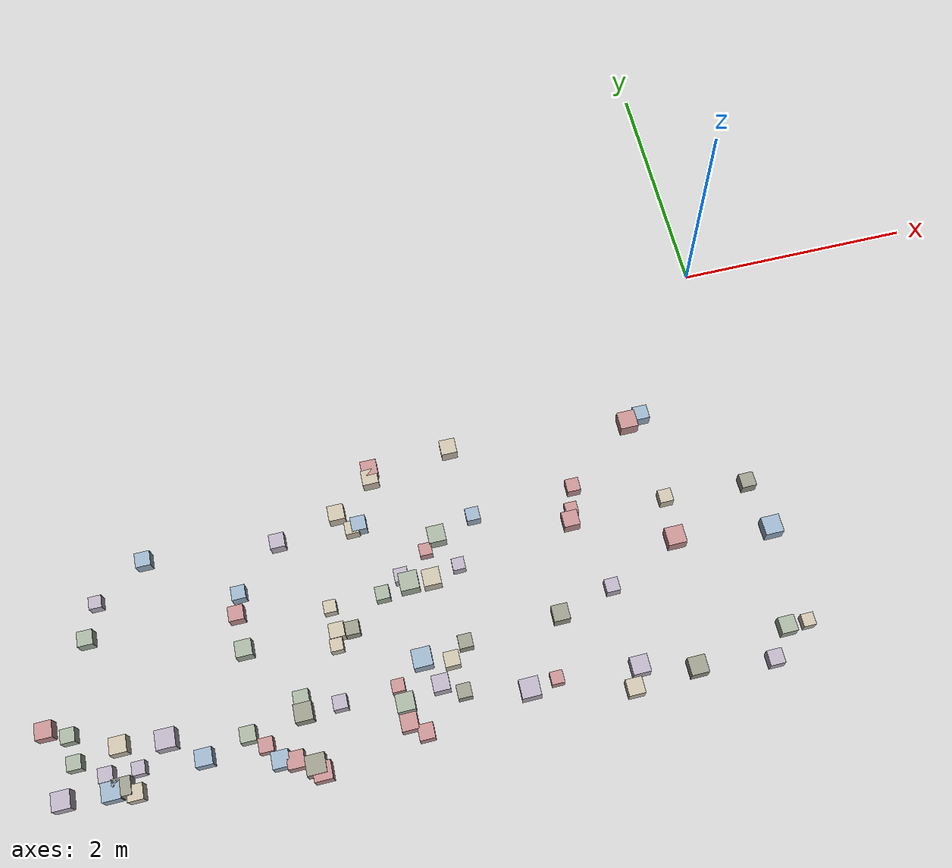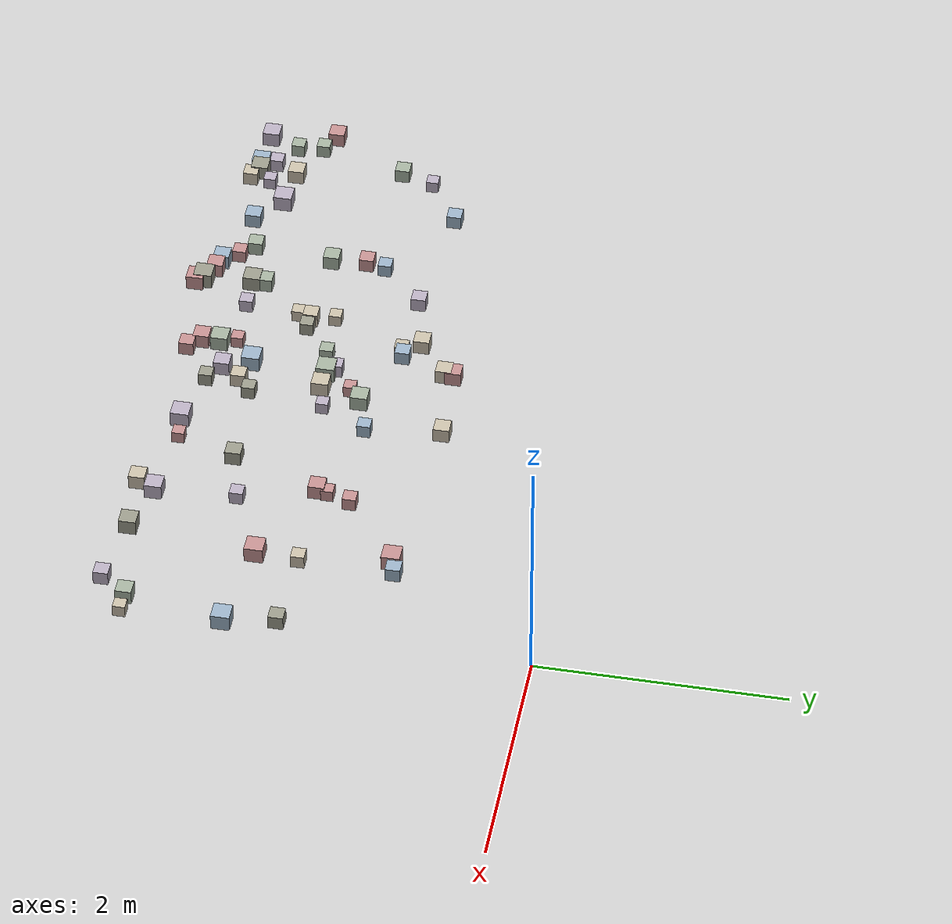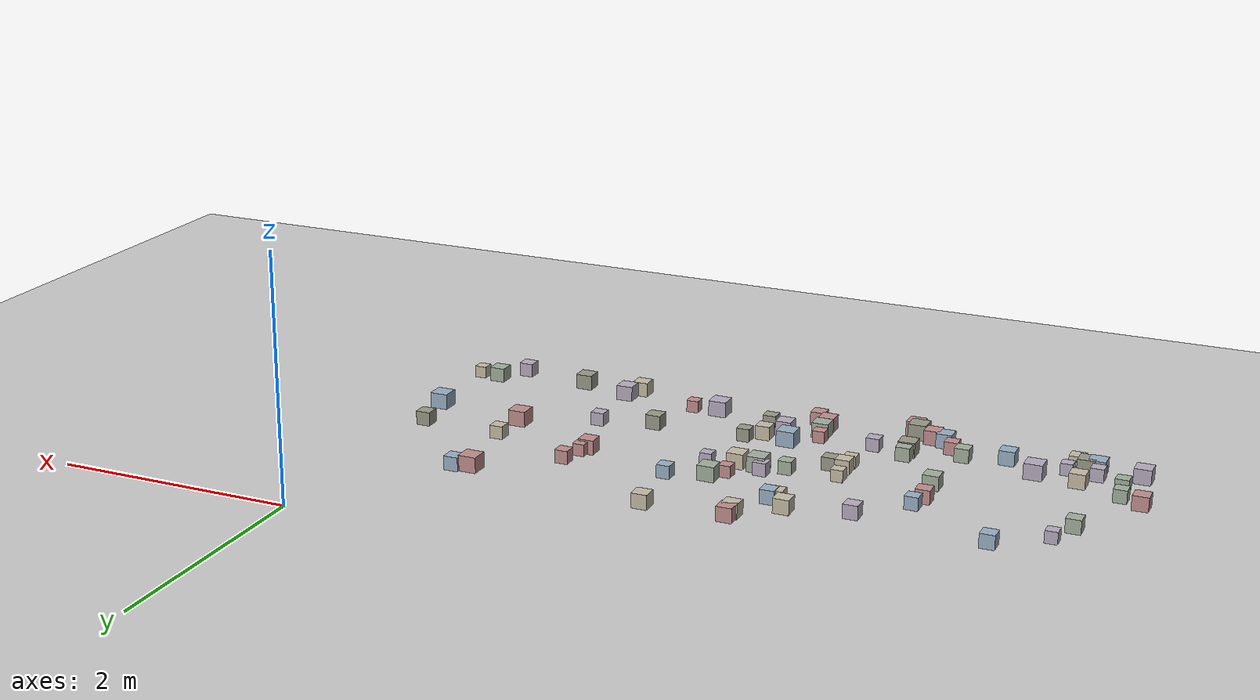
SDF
<sdf version="1.6">
 <world name="small_maze_world">
  <include><uri>model://ground_plane</uri></include>
  <include><uri>model://sun</uri></include>
  <model name="box_7">
   <static>false</static>
   <pose>-2.89 -3.04 0.05 0 0 0</pose>
   <link name="link">
    <inertial>
     <mass>0.2</mass>
     <inertia><ixx>0.001</ixx><iyy>0.001</iyy><izz>0.001</izz><ixy>0</ixy><ixz>0</ixz><iyz>0</iyz></inertia>
    </inertial>
    <collision name="collision"><geometry><box><size>0.13 0.13 0.13</size></box></geometry></collision>
    <visual name="visual">
     <geometry><box><size>0.13 0.13 0.13</size></box></geometry>
     <material><ambient>0.72 0.68 0.75 1</ambient><diffuse>0.72 0.68 0.75 1</diffuse></material>
    </visual>
   </link>
  </model>
  <model name="box_10">
   <static>false</static>
   <pose>-5.23 -3.29 0.05 0 0 0</pose>
   <link name="link">
    <inertial>
     <mass>0.2</mass>
     <inertia><ixx>0.001</ixx><iyy>0.001</iyy><izz>0.001</izz><ixy>0</ixy><ixz>0</ixz><iyz>0</iyz></inertia>
    </inertial>
    <collision name="collision"><geometry><box><size>0.12 0.12 0.12</size></box></geometry></collision>
    <visual name="visual">
     <geometry><box><size>0.12 0.12 0.12</size></box></geometry>
     <material><ambient>0.78 0.74 0.66 1</ambient><diffuse>0.78 0.74 0.66 1</diffuse></material>
    </visual>
   </link>
  </model>
  <model name="box_33">
   <static>false</static>
   <pose>-4.05 -3.34 0.05 0 0 0</pose>
   <link name="link">
    <inertial>
     <mass>0.2</mass>
     <inertia><ixx>0.001</ixx><iyy>0.001</iyy><izz>0.001</izz><ixy>0</ixy><ixz>0</ixz><iyz>0</iyz></inertia>
    </inertial>
    <collision name="collision"><geometry><box><size>0.13 0.13 0.13</size></box></geometry></collision>
    <visual name="visual">
     <geometry><box><size>0.13 0.13 0.13</size></box></geometry>
     <material><ambient>0.76 0.56 0.56 1</ambient><diffuse>0.76 0.56 0.56 1</diffuse></material>
    </visual>
   </link>
  </model>
  <model name="box_37">
   <static>false</static>
   <pose>-3.19 -2.24 0.05 0 0 0</pose>
   <link name="link">
    <inertial>
     <mass>0.2</mass>
     <inertia><ixx>0.001</ixx><iyy>0.001</iyy><izz>0.001</izz><ixy>0</ixy><ixz>0</ixz><iyz>0</iyz></inertia>
    </inertial>
    <collision name="collision"><geometry><box><size>0.11 0.11 0.11</size></box></geometry></collision>
    <visual name="visual">
     <geometry><box><size>0.11 0.11 0.11</size></box></geometry>
     <material><ambient>0.64 0.69 0.62 1</ambient><diffuse>0.64 0.69 0.62 1</diffuse></material>
    </visual>
   </link>
  </model>
  <model name="box_39">
   <static>false</static>
   <pose>-4.29 -1.97 0.05 0 0 0</pose>
   <link name="link">
    <inertial>
     <mass>0.2</mass>
     <inertia><ixx>0.001</ixx><iyy>0.001</iyy><izz>0.001</izz><ixy>0</ixy><ixz>0</ixz><iyz>0</iyz></inertia>
    </inertial>
    <collision name="collision"><geometry><box><size>0.11 0.11 0.11</size></box></geometry></collision>
    <visual name="visual">
     <geometry><box><size>0.11 0.11 0.11</size></box></geometry>
     <material><ambient>0.6 0.69 0.77 1</ambient><diffuse>0.6 0.69 0.77 1</diffuse></material>
    </visual>
   </link>
  </model>
  <model name="box_45">
   <static>false</static>
   <pose>-0.92 -1.27 0.05 0 0 0</pose>
   <link name="link">
    <inertial>
     <mass>0.2</mass>
     <inertia><ixx>0.001</ixx><iyy>0.001</iyy><izz>0.001</izz><ixy>0</ixy><ixz>0</ixz><iyz>0</iyz></inertia>
    </inertial>
    <collision name="collision"><geometry><box><size>0.15 0.15 0.15</size></box></geometry></collision>
    <visual name="visual">
     <geometry><box><size>0.15 0.15 0.15</size></box></geometry>
     <material><ambient>0.76 0.56 0.56 1</ambient><diffuse>0.76 0.56 0.56 1</diffuse></material>
    </visual>
   </link>
  </model>
  <model name="box_60">
   <static>false</static>
   <pose>-1.6 -2.0 0.05 0 0 0</pose>
   <link name="link">
    <inertial>
     <mass>0.2</mass>
     <inertia><ixx>0.001</ixx><iyy>0.001</iyy><izz>0.001</izz><ixy>0</ixy><ixz>0</ixz><iyz>0</iyz></inertia>
    </inertial>
    <collision name="collision"><geometry><box><size>0.13 0.13 0.13</size></box></geometry></collision>
    <visual name="visual">
     <geometry><box><size>0.13 0.13 0.13</size></box></geometry>
     <material><ambient>0.76 0.56 0.56 1</ambient><diffuse>0.76 0.56 0.56 1</diffuse></material>
    </visual>
   </link>
  </model>
  <model name="box_61">
   <static>false</static>
   <pose>-2.99 -2.82 0.05 0 0 0</pose>
   <link name="link">
    <inertial>
     <mass>0.2</mass>
     <inertia><ixx>0.001</ixx><iyy>0.001</iyy><izz>0.001</izz><ixy>0</ixy><ixz>0</ixz><iyz>0</iyz></inertia>
    </inertial>
    <collision name="collision"><geometry><box><size>0.15 0.15 0.15</size></box></geometry></collision>
    <visual name="visual">
     <geometry><box><size>0.15 0.15 0.15</size></box></geometry>
     <material><ambient>0.6 0.69 0.77 1</ambient><diffuse>0.6 0.69 0.77 1</diffuse></material>
    </visual>
   </link>
  </model>
  <model name="box_64">
   <static>false</static>
   <pose>-5.4 -3.24 0.05 0 0 0</pose>
   <link name="link">
    <inertial>
     <mass>0.2</mass>
     <inertia><ixx>0.001</ixx><iyy>0.001</iyy><izz>0.001</izz><ixy>0</ixy><ixz>0</ixz><iyz>0</iyz></inertia>
    </inertial>
    <collision name="collision"><geometry><box><size>0.14 0.14 0.14</size></box></geometry></collision>
    <visual name="visual">
     <geometry><box><size>0.14 0.14 0.14</size></box></geometry>
     <material><ambient>0.6 0.69 0.77 1</ambient><diffuse>0.6 0.69 0.77 1</diffuse></material>
    </visual>
   </link>
  </model>
  <model name="box_68">
   <static>false</static>
   <pose>-2.56 -2.15 0.05 0 0 0</pose>
   <link name="link">
    <inertial>
     <mass>0.2</mass>
     <inertia><ixx>0.001</ixx><iyy>0.001</iyy><izz>0.001</izz><ixy>0</ixy><ixz>0</ixz><iyz>0</iyz></inertia>
    </inertial>
    <collision name="collision"><geometry><box><size>0.1 0.1 0.1</size></box></geometry></collision>
    <visual name="visual">
     <geometry><box><size>0.1 0.1 0.1</size></box></geometry>
     <material><ambient>0.72 0.68 0.75 1</ambient><diffuse>0.72 0.68 0.75 1</diffuse></material>
    </visual>
   </link>
  </model>
  <model name="box_70">
   <static>false</static>
   <pose>-3.11 -1.26 0.05 0 0 0</pose>
   <link name="link">
    <inertial>
     <mass>0.2</mass>
     <inertia><ixx>0.001</ixx><iyy>0.001</iyy><izz>0.001</izz><ixy>0</ixy><ixz>0</ixz><iyz>0</iyz></inertia>
    </inertial>
    <collision name="collision"><geometry><box><size>0.13 0.13 0.13</size></box></geometry></collision>
    <visual name="visual">
     <geometry><box><size>0.13 0.13 0.13</size></box></geometry>
     <material><ambient>0.78 0.74 0.66 1</ambient><diffuse>0.78 0.74 0.66 1</diffuse></material>
    </visual>
   </link>
  </model>
  <model name="box_85">
   <static>false</static>
   <pose>-0.11 -2.02 0.05 0 0 0</pose>
   <link name="link">
    <inertial>
     <mass>0.2</mass>
     <inertia><ixx>0.001</ixx><iyy>0.001</iyy><izz>0.001</izz><ixy>0</ixy><ixz>0</ixz><iyz>0</iyz></inertia>
    </inertial>
    <collision name="collision"><geometry><box><size>0.12 0.12 0.12</size></box></geometry></collision>
    <visual name="visual">
     <geometry><box><size>0.12 0.12 0.12</size></box></geometry>
     <material><ambient>0.6 0.6 0.54 1</ambient><diffuse>0.6 0.6 0.54 1</diffuse></material>
    </visual>
   </link>
  </model>
  <model name="box_88">
   <static>false</static>
   <pose>-5.19 -3.12 0.05 0 0 0</pose>
   <link name="link">
    <inertial>
     <mass>0.2</mass>
     <inertia><ixx>0.001</ixx><iyy>0.001</iyy><izz>0.001</izz><ixy>0</ixy><ixz>0</ixz><iyz>0</iyz></inertia>
    </inertial>
    <collision name="collision"><geometry><box><size>0.1 0.1 0.1</size></box></geometry></collision>
    <visual name="visual">
     <geometry><box><size>0.1 0.1 0.1</size></box></geometry>
     <material><ambient>0.72 0.68 0.75 1</ambient><diffuse>0.72 0.68 0.75 1</diffuse></material>
    </visual>
   </link>
  </model>
  <model name="box_91">
   <static>false</static>
   <pose>-4.71 -3.16 0.05 0 0 0</pose>
   <link name="link">
    <inertial>
     <mass>0.2</mass>
     <inertia><ixx>0.001</ixx><iyy>0.001</iyy><izz>0.001</izz><ixy>0</ixy><ixz>0</ixz><iyz>0</iyz></inertia>
    </inertial>
    <collision name="collision"><geometry><box><size>0.13 0.13 0.13</size></box></geometry></collision>
    <visual name="visual">
     <geometry><box><size>0.13 0.13 0.13</size></box></geometry>
     <material><ambient>0.6 0.69 0.77 1</ambient><diffuse>0.6 0.69 0.77 1</diffuse></material>
    </visual>
   </link>
  </model>
  <model name="box_92">
   <static>false</static>
   <pose>-1.87 -2.73 0.05 0 0 0</pose>
   <link name="link">
    <inertial>
     <mass>0.2</mass>
     <inertia><ixx>0.001</ixx><iyy>0.001</iyy><izz>0.001</izz><ixy>0</ixy><ixz>0</ixz><iyz>0</iyz></inertia>
    </inertial>
    <collision name="collision"><geometry><box><size>0.13 0.13 0.13</size></box></geometry></collision>
    <visual name="visual">
     <geometry><box><size>0.13 0.13 0.13</size></box></geometry>
     <material><ambient>0.6 0.6 0.54 1</ambient><diffuse>0.6 0.6 0.54 1</diffuse></material>
    </visual>
   </link>
  </model>
  <model name="box_93">
   <static>false</static>
   <pose>-2.97 -2.2 0.05 0 0 0</pose>
   <link name="link">
    <inertial>
     <mass>0.2</mass>
     <inertia><ixx>0.001</ixx><iyy>0.001</iyy><izz>0.001</izz><ixy>0</ixy><ixz>0</ixz><iyz>0</iyz></inertia>
    </inertial>
    <collision name="collision"><geometry><box><size>0.15 0.15 0.15</size></box></geometry></collision>
    <visual name="visual">
     <geometry><box><size>0.15 0.15 0.15</size></box></geometry>
     <material><ambient>0.64 0.69 0.62 1</ambient><diffuse>0.64 0.69 0.62 1</diffuse></material>
    </visual>
   </link>
  </model>
  <model name="box_103">
   <static>false</static>
   <pose>-2.77 -2.88 0.05 0 0 0</pose>
   <link name="link">
    <inertial>
     <mass>0.2</mass>
     <inertia><ixx>0.001</ixx><iyy>0.001</iyy><izz>0.001</izz><ixy>0</ixy><ixz>0</ixz><iyz>0</iyz></inertia>
    </inertial>
    <collision name="collision"><geometry><box><size>0.12 0.12 0.12</size></box></geometry></collision>
    <visual name="visual">
     <geometry><box><size>0.12 0.12 0.12</size></box></geometry>
     <material><ambient>0.78 0.74 0.66 1</ambient><diffuse>0.78 0.74 0.66 1</diffuse></material>
    </visual>
   </link>
  </model>
  <model name="box_110">
   <static>false</static>
   <pose>-4.33 -2.13 0.05 0 0 0</pose>
   <link name="link">
    <inertial>
     <mass>0.2</mass>
     <inertia><ixx>0.001</ixx><iyy>0.001</iyy><izz>0.001</izz><ixy>0</ixy><ixz>0</ixz><iyz>0</iyz></inertia>
    </inertial>
    <collision name="collision"><geometry><box><size>0.12 0.12 0.12</size></box></geometry></collision>
    <visual name="visual">
     <geometry><box><size>0.12 0.12 0.12</size></box></geometry>
     <material><ambient>0.76 0.56 0.56 1</ambient><diffuse>0.76 0.56 0.56 1</diffuse></material>
    </visual>
   </link>
  </model>
  <model name="box_111">
   <static>false</static>
   <pose>-3.61 -2.56 0.05 0 0 0</pose>
   <link name="link">
    <inertial>
     <mass>0.2</mass>
     <inertia><ixx>0.001</ixx><iyy>0.001</iyy><izz>0.001</izz><ixy>0</ixy><ixz>0</ixz><iyz>0</iyz></inertia>
    </inertial>
    <collision name="collision"><geometry><box><size>0.1 0.1 0.1</size></box></geometry></collision>
    <visual name="visual">
     <geometry><box><size>0.1 0.1 0.1</size></box></geometry>
     <material><ambient>0.78 0.74 0.66 1</ambient><diffuse>0.78 0.74 0.66 1</diffuse></material>
    </visual>
   </link>
  </model>
  <model name="box_116">
   <static>false</static>
   <pose>-2.64 -2.77 0.05 0 0 0</pose>
   <link name="link">
    <inertial>
     <mass>0.2</mass>
     <inertia><ixx>0.001</ixx><iyy>0.001</iyy><izz>0.001</izz><ixy>0</ixy><ixz>0</ixz><iyz>0</iyz></inertia>
    </inertial>
    <collision name="collision"><geometry><box><size>0.11 0.11 0.11</size></box></geometry></collision>
    <visual name="visual">
     <geometry><box><size>0.11 0.11 0.11</size></box></geometry>
     <material><ambient>0.6 0.6 0.54 1</ambient><diffuse>0.6 0.6 0.54 1</diffuse></material>
    </visual>
   </link>
  </model>
  <model name="box_119">
   <static>false</static>
   <pose>-3.27 -1.63 0.05 0 0 0</pose>
   <link name="link">
    <inertial>
     <mass>0.2</mass>
     <inertia><ixx>0.001</ixx><iyy>0.001</iyy><izz>0.001</izz><ixy>0</ixy><ixz>0</ixz><iyz>0</iyz></inertia>
    </inertial>
    <collision name="collision"><geometry><box><size>0.12 0.12 0.12</size></box></geometry></collision>
    <visual name="visual">
     <geometry><box><size>0.12 0.12 0.12</size></box></geometry>
     <material><ambient>0.6 0.69 0.77 1</ambient><diffuse>0.6 0.69 0.77 1</diffuse></material>
    </visual>
   </link>
  </model>
  <model name="box_132">
   <static>false</static>
   <pose>-0.8 -1.99 0.05 0 0 0</pose>
   <link name="link">
    <inertial>
     <mass>0.2</mass>
     <inertia><ixx>0.001</ixx><iyy>0.001</iyy><izz>0.001</izz><ixy>0</ixy><ixz>0</ixz><iyz>0</iyz></inertia>
    </inertial>
    <collision name="collision"><geometry><box><size>0.11 0.11 0.11</size></box></geometry></collision>
    <visual name="visual">
     <geometry><box><size>0.11 0.11 0.11</size></box></geometry>
     <material><ambient>0.78 0.74 0.66 1</ambient><diffuse>0.78 0.74 0.66 1</diffuse></material>
    </visual>
   </link>
  </model>
  <model name="box_144">
   <static>false</static>
   <pose>-5.32 -3.23 0.05 0 0 0</pose>
   <link name="link">
    <inertial>
     <mass>0.2</mass>
     <inertia><ixx>0.001</ixx><iyy>0.001</iyy><izz>0.001</izz><ixy>0</ixy><ixz>0</ixz><iyz>0</iyz></inertia>
    </inertial>
    <collision name="collision"><geometry><box><size>0.14 0.14 0.14</size></box></geometry></collision>
    <visual name="visual">
     <geometry><box><size>0.14 0.14 0.14</size></box></geometry>
     <material><ambient>0.6 0.6 0.54 1</ambient><diffuse>0.6 0.6 0.54 1</diffuse></material>
    </visual>
   </link>
  </model>
  <model name="box_147">
   <static>false</static>
   <pose>-4.37 -3.07 0.05 0 0 0</pose>
   <link name="link">
    <inertial>
     <mass>0.2</mass>
     <inertia><ixx>0.001</ixx><iyy>0.001</iyy><izz>0.001</izz><ixy>0</ixy><ixz>0</ixz><iyz>0</iyz></inertia>
    </inertial>
    <collision name="collision"><geometry><box><size>0.12 0.12 0.12</size></box></geometry></collision>
    <visual name="visual">
     <geometry><box><size>0.12 0.12 0.12</size></box></geometry>
     <material><ambient>0.64 0.69 0.62 1</ambient><diffuse>0.64 0.69 0.62 1</diffuse></material>
    </visual>
   </link>
  </model>
  <model name="box_149">
   <static>false</static>
   <pose>-0.01 -3.24 0.05 0 0 0</pose>
   <link name="link">
    <inertial>
     <mass>0.2</mass>
     <inertia><ixx>0.001</ixx><iyy>0.001</iyy><izz>0.001</izz><ixy>0</ixy><ixz>0</ixz><iyz>0</iyz></inertia>
    </inertial>
    <collision name="collision"><geometry><box><size>0.1 0.1 0.1</size></box></geometry></collision>
    <visual name="visual">
     <geometry><box><size>0.1 0.1 0.1</size></box></geometry>
     <material><ambient>0.78 0.74 0.66 1</ambient><diffuse>0.78 0.74 0.66 1</diffuse></material>
    </visual>
   </link>
  </model>
  <model name="box_150">
   <static>false</static>
   <pose>-1.38 -3.27 0.05 0 0 0</pose>
   <link name="link">
    <inertial>
     <mass>0.2</mass>
     <inertia><ixx>0.001</ixx><iyy>0.001</iyy><izz>0.001</izz><ixy>0</ixy><ixz>0</ixz><iyz>0</iyz></inertia>
    </inertial>
    <collision name="collision"><geometry><box><size>0.14 0.14 0.14</size></box></geometry></collision>
    <visual name="visual">
     <geometry><box><size>0.14 0.14 0.14</size></box></geometry>
     <material><ambient>0.72 0.68 0.75 1</ambient><diffuse>0.72 0.68 0.75 1</diffuse></material>
    </visual>
   </link>
  </model>
  <model name="box_155">
   <static>false</static>
   <pose>-0.82 -2.34 0.05 0 0 0</pose>
   <link name="link">
    <inertial>
     <mass>0.2</mass>
     <inertia><ixx>0.001</ixx><iyy>0.001</iyy><izz>0.001</izz><ixy>0</ixy><ixz>0</ixz><iyz>0</iyz></inertia>
    </inertial>
    <collision name="collision"><geometry><box><size>0.15 0.15 0.15</size></box></geometry></collision>
    <visual name="visual">
     <geometry><box><size>0.15 0.15 0.15</size></box></geometry>
     <material><ambient>0.76 0.56 0.56 1</ambient><diffuse>0.76 0.56 0.56 1</diffuse></material>
    </visual>
   </link>
  </model>
  <model name="box_159">
   <static>false</static>
   <pose>-4.99 -1.52 0.05 0 0 0</pose>
   <link name="link">
    <inertial>
     <mass>0.2</mass>
     <inertia><ixx>0.001</ixx><iyy>0.001</iyy><izz>0.001</izz><ixy>0</ixy><ixz>0</ixz><iyz>0</iyz></inertia>
    </inertial>
    <collision name="collision"><geometry><box><size>0.12 0.12 0.12</size></box></geometry></collision>
    <visual name="visual">
     <geometry><box><size>0.12 0.12 0.12</size></box></geometry>
     <material><ambient>0.6 0.69 0.77 1</ambient><diffuse>0.6 0.69 0.77 1</diffuse></material>
    </visual>
   </link>
  </model>
  <model name="box_178">
   <static>false</static>
   <pose>-2.68 -1.87 0.05 0 0 0</pose>
   <link name="link">
    <inertial>
     <mass>0.2</mass>
     <inertia><ixx>0.001</ixx><iyy>0.001</iyy><izz>0.001</izz><ixy>0</ixy><ixz>0</ixz><iyz>0</iyz></inertia>
    </inertial>
    <collision name="collision"><geometry><box><size>0.14 0.14 0.14</size></box></geometry></collision>
    <visual name="visual">
     <geometry><box><size>0.14 0.14 0.14</size></box></geometry>
     <material><ambient>0.64 0.69 0.62 1</ambient><diffuse>0.64 0.69 0.62 1</diffuse></material>
    </visual>
   </link>
  </model>
  <model name="box_179">
   <static>false</static>
   <pose>-1.46 -3.42 0.05 0 0 0</pose>
   <link name="link">
    <inertial>
     <mass>0.2</mass>
     <inertia><ixx>0.001</ixx><iyy>0.001</iyy><izz>0.001</izz><ixy>0</ixy><ixz>0</ixz><iyz>0</iyz></inertia>
    </inertial>
    <collision name="collision"><geometry><box><size>0.13 0.13 0.13</size></box></geometry></collision>
    <visual name="visual">
     <geometry><box><size>0.13 0.13 0.13</size></box></geometry>
     <material><ambient>0.78 0.74 0.66 1</ambient><diffuse>0.78 0.74 0.66 1</diffuse></material>
    </visual>
   </link>
  </model>
  <model name="box_183">
   <static>false</static>
   <pose>-3.21 -2.98 0.05 0 0 0</pose>
   <link name="link">
    <inertial>
     <mass>0.2</mass>
     <inertia><ixx>0.001</ixx><iyy>0.001</iyy><izz>0.001</izz><ixy>0</ixy><ixz>0</ixz><iyz>0</iyz></inertia>
    </inertial>
    <collision name="collision"><geometry><box><size>0.1 0.1 0.1</size></box></geometry></collision>
    <visual name="visual">
     <geometry><box><size>0.1 0.1 0.1</size></box></geometry>
     <material><ambient>0.76 0.56 0.56 1</ambient><diffuse>0.76 0.56 0.56 1</diffuse></material>
    </visual>
   </link>
  </model>
  <model name="box_185">
   <static>false</static>
   <pose>-4.16 -3.31 0.05 0 0 0</pose>
   <link name="link">
    <inertial>
     <mass>0.2</mass>
     <inertia><ixx>0.001</ixx><iyy>0.001</iyy><izz>0.001</izz><ixy>0</ixy><ixz>0</ixz><iyz>0</iyz></inertia>
    </inertial>
    <collision name="collision"><geometry><box><size>0.13 0.13 0.13</size></box></geometry></collision>
    <visual name="visual">
     <geometry><box><size>0.13 0.13 0.13</size></box></geometry>
     <material><ambient>0.6 0.69 0.77 1</ambient><diffuse>0.6 0.69 0.77 1</diffuse></material>
    </visual>
   </link>
  </model>
  <model name="box_186">
   <static>false</static>
   <pose>-5.65 -2.97 0.05 0 0 0</pose>
   <link name="link">
    <inertial>
     <mass>0.2</mass>
     <inertia><ixx>0.001</ixx><iyy>0.001</iyy><izz>0.001</izz><ixy>0</ixy><ixz>0</ixz><iyz>0</iyz></inertia>
    </inertial>
    <collision name="collision"><geometry><box><size>0.11 0.11 0.11</size></box></geometry></collision>
    <visual name="visual">
     <geometry><box><size>0.11 0.11 0.11</size></box></geometry>
     <material><ambient>0.64 0.69 0.62 1</ambient><diffuse>0.64 0.69 0.62 1</diffuse></material>
    </visual>
   </link>
  </model>
  <model name="box_192">
   <static>false</static>
   <pose>-2.02 -3.21 0.05 0 0 0</pose>
   <link name="link">
    <inertial>
     <mass>0.2</mass>
     <inertia><ixx>0.001</ixx><iyy>0.001</iyy><izz>0.001</izz><ixy>0</ixy><ixz>0</ixz><iyz>0</iyz></inertia>
    </inertial>
    <collision name="collision"><geometry><box><size>0.1 0.1 0.1</size></box></geometry></collision>
    <visual name="visual">
     <geometry><box><size>0.1 0.1 0.1</size></box></geometry>
     <material><ambient>0.76 0.56 0.56 1</ambient><diffuse>0.76 0.56 0.56 1</diffuse></material>
    </visual>
   </link>
  </model>
  <model name="box_201">
   <static>false</static>
   <pose>-2.36 -1.77 0.05 0 0 0</pose>
   <link name="link">
    <inertial>
     <mass>0.2</mass>
     <inertia><ixx>0.001</ixx><iyy>0.001</iyy><izz>0.001</izz><ixy>0</ixy><ixz>0</ixz><iyz>0</iyz></inertia>
    </inertial>
    <collision name="collision"><geometry><box><size>0.11 0.11 0.11</size></box></geometry></collision>
    <visual name="visual">
     <geometry><box><size>0.11 0.11 0.11</size></box></geometry>
     <material><ambient>0.6 0.69 0.77 1</ambient><diffuse>0.6 0.69 0.77 1</diffuse></material>
    </visual>
   </link>
  </model>
  <model name="box_217">
   <static>false</static>
   <pose>-5.43 -3.11 0.05 0 0 0</pose>
   <link name="link">
    <inertial>
     <mass>0.2</mass>
     <inertia><ixx>0.001</ixx><iyy>0.001</iyy><izz>0.001</izz><ixy>0</ixy><ixz>0</ixz><iyz>0</iyz></inertia>
    </inertial>
    <collision name="collision"><geometry><box><size>0.11 0.11 0.11</size></box></geometry></collision>
    <visual name="visual">
     <geometry><box><size>0.11 0.11 0.11</size></box></geometry>
     <material><ambient>0.72 0.68 0.75 1</ambient><diffuse>0.72 0.68 0.75 1</diffuse></material>
    </visual>
   </link>
  </model>
  <model name="box_232">
   <static>false</static>
   <pose>-5.32 -2.92 0.05 0 0 0</pose>
   <link name="link">
    <inertial>
     <mass>0.2</mass>
     <inertia><ixx>0.001</ixx><iyy>0.001</iyy><izz>0.001</izz><ixy>0</ixy><ixz>0</ixz><iyz>0</iyz></inertia>
    </inertial>
    <collision name="collision"><geometry><box><size>0.13 0.13 0.13</size></box></geometry></collision>
    <visual name="visual">
     <geometry><box><size>0.13 0.13 0.13</size></box></geometry>
     <material><ambient>0.78 0.74 0.66 1</ambient><diffuse>0.78 0.74 0.66 1</diffuse></material>
    </visual>
   </link>
  </model>
  <model name="box_234">
   <static>false</static>
   <pose>-3.18 -3.27 0.05 0 0 0</pose>
   <link name="link">
    <inertial>
     <mass>0.2</mass>
     <inertia><ixx>0.001</ixx><iyy>0.001</iyy><izz>0.001</izz><ixy>0</ixy><ixz>0</ixz><iyz>0</iyz></inertia>
    </inertial>
    <collision name="collision"><geometry><box><size>0.13 0.13 0.13</size></box></geometry></collision>
    <visual name="visual">
     <geometry><box><size>0.13 0.13 0.13</size></box></geometry>
     <material><ambient>0.76 0.56 0.56 1</ambient><diffuse>0.76 0.56 0.56 1</diffuse></material>
    </visual>
   </link>
  </model>
  <model name="box_240">
   <static>false</static>
   <pose>-2.24 -3.24 0.05 0 0 0</pose>
   <link name="link">
    <inertial>
     <mass>0.2</mass>
     <inertia><ixx>0.001</ixx><iyy>0.001</iyy><izz>0.001</izz><ixy>0</ixy><ixz>0</ixz><iyz>0</iyz></inertia>
    </inertial>
    <collision name="collision"><geometry><box><size>0.15 0.15 0.15</size></box></geometry></collision>
    <visual name="visual">
     <geometry><box><size>0.15 0.15 0.15</size></box></geometry>
     <material><ambient>0.72 0.68 0.75 1</ambient><diffuse>0.72 0.68 0.75 1</diffuse></material>
    </visual>
   </link>
  </model>
  <model name="box_246">
   <static>false</static>
   <pose>-2.78 -2.21 0.05 0 0 0</pose>
   <link name="link">
    <inertial>
     <mass>0.2</mass>
     <inertia><ixx>0.001</ixx><iyy>0.001</iyy><izz>0.001</izz><ixy>0</ixy><ixz>0</ixz><iyz>0</iyz></inertia>
    </inertial>
    <collision name="collision"><geometry><box><size>0.11 0.11 0.11</size></box></geometry></collision>
    <visual name="visual">
     <geometry><box><size>0.11 0.11 0.11</size></box></geometry>
     <material><ambient>0.78 0.74 0.66 1</ambient><diffuse>0.78 0.74 0.66 1</diffuse></material>
    </visual>
   </link>
  </model>
  <model name="box_248">
   <static>false</static>
   <pose>-2.73 -3.14 0.05 0 0 0</pose>
   <link name="link">
    <inertial>
     <mass>0.2</mass>
     <inertia><ixx>0.001</ixx><iyy>0.001</iyy><izz>0.001</izz><ixy>0</ixy><ixz>0</ixz><iyz>0</iyz></inertia>
    </inertial>
    <collision name="collision"><geometry><box><size>0.11 0.11 0.11</size></box></geometry></collision>
    <visual name="visual">
     <geometry><box><size>0.11 0.11 0.11</size></box></geometry>
     <material><ambient>0.6 0.6 0.54 1</ambient><diffuse>0.6 0.6 0.54 1</diffuse></material>
    </visual>
   </link>
  </model>
  <model name="box_249">
   <static>false</static>
   <pose>-3.66 -3.0 0.05 0 0 0</pose>
   <link name="link">
    <inertial>
     <mass>0.2</mass>
     <inertia><ixx>0.001</ixx><iyy>0.001</iyy><izz>0.001</izz><ixy>0</ixy><ixz>0</ixz><iyz>0</iyz></inertia>
    </inertial>
    <collision name="collision"><geometry><box><size>0.11 0.11 0.11</size></box></geometry></collision>
    <visual name="visual">
     <geometry><box><size>0.11 0.11 0.11</size></box></geometry>
     <material><ambient>0.72 0.68 0.75 1</ambient><diffuse>0.72 0.68 0.75 1</diffuse></material>
    </visual>
   </link>
  </model>
  <model name="box_259">
   <static>false</static>
   <pose>-0.95 -3.38 0.05 0 0 0</pose>
   <link name="link">
    <inertial>
     <mass>0.2</mass>
     <inertia><ixx>0.001</ixx><iyy>0.001</iyy><izz>0.001</izz><ixy>0</ixy><ixz>0</ixz><iyz>0</iyz></inertia>
    </inertial>
    <collision name="collision"><geometry><box><size>0.14 0.14 0.14</size></box></geometry></collision>
    <visual name="visual">
     <geometry><box><size>0.14 0.14 0.14</size></box></geometry>
     <material><ambient>0.6 0.6 0.54 1</ambient><diffuse>0.6 0.6 0.54 1</diffuse></material>
    </visual>
   </link>
  </model>
  <model name="box_261">
   <static>false</static>
   <pose>-3.47 -2.46 0.05 0 0 0</pose>
   <link name="link">
    <inertial>
     <mass>0.2</mass>
     <inertia><ixx>0.001</ixx><iyy>0.001</iyy><izz>0.001</izz><ixy>0</ixy><ixz>0</ixz><iyz>0</iyz></inertia>
    </inertial>
    <collision name="collision"><geometry><box><size>0.11 0.11 0.11</size></box></geometry></collision>
    <visual name="visual">
     <geometry><box><size>0.11 0.11 0.11</size></box></geometry>
     <material><ambient>0.6 0.6 0.54 1</ambient><diffuse>0.6 0.6 0.54 1</diffuse></material>
    </visual>
   </link>
  </model>
  <model name="box_262">
   <static>false</static>
   <pose>-3.33 -1.65 0.05 0 0 0</pose>
   <link name="link">
    <inertial>
     <mass>0.2</mass>
     <inertia><ixx>0.001</ixx><iyy>0.001</iyy><izz>0.001</izz><ixy>0</ixy><ixz>0</ixz><iyz>0</iyz></inertia>
    </inertial>
    <collision name="collision"><geometry><box><size>0.11 0.11 0.11</size></box></geometry></collision>
    <visual name="visual">
     <geometry><box><size>0.11 0.11 0.11</size></box></geometry>
     <material><ambient>0.78 0.74 0.66 1</ambient><diffuse>0.78 0.74 0.66 1</diffuse></material>
    </visual>
   </link>
  </model>
  <model name="box_272">
   <static>false</static>
   <pose>-2.43 -1.15 0.05 0 0 0</pose>
   <link name="link">
    <inertial>
     <mass>0.2</mass>
     <inertia><ixx>0.001</ixx><iyy>0.001</iyy><izz>0.001</izz><ixy>0</ixy><ixz>0</ixz><iyz>0</iyz></inertia>
    </inertial>
    <collision name="collision"><geometry><box><size>0.13 0.13 0.13</size></box></geometry></collision>
    <visual name="visual">
     <geometry><box><size>0.13 0.13 0.13</size></box></geometry>
     <material><ambient>0.78 0.74 0.66 1</ambient><diffuse>0.78 0.74 0.66 1</diffuse></material>
    </visual>
   </link>
  </model>
  <model name="box_297">
   <static>false</static>
   <pose>-3.43 -1.5 0.05 0 0 0</pose>
   <link name="link">
    <inertial>
     <mass>0.2</mass>
     <inertia><ixx>0.001</ixx><iyy>0.001</iyy><izz>0.001</izz><ixy>0</ixy><ixz>0</ixz><iyz>0</iyz></inertia>
    </inertial>
    <collision name="collision"><geometry><box><size>0.13 0.13 0.13</size></box></geometry></collision>
    <visual name="visual">
     <geometry><box><size>0.13 0.13 0.13</size></box></geometry>
     <material><ambient>0.78 0.74 0.66 1</ambient><diffuse>0.78 0.74 0.66 1</diffuse></material>
    </visual>
   </link>
  </model>
  <model name="box_298">
   <static>false</static>
   <pose>-0.79 -1.23 0.05 0 0 0</pose>
   <link name="link">
    <inertial>
     <mass>0.2</mass>
     <inertia><ixx>0.001</ixx><iyy>0.001</iyy><izz>0.001</izz><ixy>0</ixy><ixz>0</ixz><iyz>0</iyz></inertia>
    </inertial>
    <collision name="collision"><geometry><box><size>0.12 0.12 0.12</size></box></geometry></collision>
    <visual name="visual">
     <geometry><box><size>0.12 0.12 0.12</size></box></geometry>
     <material><ambient>0.6 0.69 0.77 1</ambient><diffuse>0.6 0.69 0.77 1</diffuse></material>
    </visual>
   </link>
  </model>
  <model name="box_300">
   <static>false</static>
   <pose>-3.1 -1.18 0.05 0 0 0</pose>
   <link name="link">
    <inertial>
     <mass>0.2</mass>
     <inertia><ixx>0.001</ixx><iyy>0.001</iyy><izz>0.001</izz><ixy>0</ixy><ixz>0</ixz><iyz>0</iyz></inertia>
    </inertial>
    <collision name="collision"><geometry><box><size>0.13 0.13 0.13</size></box></geometry></collision>
    <visual name="visual">
     <geometry><box><size>0.13 0.13 0.13</size></box></geometry>
     <material><ambient>0.76 0.56 0.56 1</ambient><diffuse>0.76 0.56 0.56 1</diffuse></material>
    </visual>
   </link>
  </model>
  <model name="box_304">
   <static>false</static>
   <pose>-1.51 -1.72 0.05 0 0 0</pose>
   <link name="link">
    <inertial>
     <mass>0.2</mass>
     <inertia><ixx>0.001</ixx><iyy>0.001</iyy><izz>0.001</izz><ixy>0</ixy><ixz>0</ixz><iyz>0</iyz></inertia>
    </inertial>
    <collision name="collision"><geometry><box><size>0.11 0.11 0.11</size></box></geometry></collision>
    <visual name="visual">
     <geometry><box><size>0.11 0.11 0.11</size></box></geometry>
     <material><ambient>0.76 0.56 0.56 1</ambient><diffuse>0.76 0.56 0.56 1</diffuse></material>
    </visual>
   </link>
  </model>
  <model name="box_322">
   <static>false</static>
   <pose>-2.79 -1.97 0.05 0 0 0</pose>
   <link name="link">
    <inertial>
     <mass>0.2</mass>
     <inertia><ixx>0.001</ixx><iyy>0.001</iyy><izz>0.001</izz><ixy>0</ixy><ixz>0</ixz><iyz>0</iyz></inertia>
    </inertial>
    <collision name="collision"><geometry><box><size>0.1 0.1 0.1</size></box></geometry></collision>
    <visual name="visual">
     <geometry><box><size>0.1 0.1 0.1</size></box></geometry>
     <material><ambient>0.76 0.56 0.56 1</ambient><diffuse>0.76 0.56 0.56 1</diffuse></material>
    </visual>
   </link>
  </model>
  <model name="box_327">
   <static>false</static>
   <pose>-1.42 -2.61 0.05 0 0 0</pose>
   <link name="link">
    <inertial>
     <mass>0.2</mass>
     <inertia><ixx>0.001</ixx><iyy>0.001</iyy><izz>0.001</izz><ixy>0</ixy><ixz>0</ixz><iyz>0</iyz></inertia>
    </inertial>
    <collision name="collision"><geometry><box><size>0.11 0.11 0.11</size></box></geometry></collision>
    <visual name="visual">
     <geometry><box><size>0.11 0.11 0.11</size></box></geometry>
     <material><ambient>0.72 0.68 0.75 1</ambient><diffuse>0.72 0.68 0.75 1</diffuse></material>
    </visual>
   </link>
  </model>
  <model name="box_331">
   <static>false</static>
   <pose>-5.68 -2.76 0.05 0 0 0</pose>
   <link name="link">
    <inertial>
     <mass>0.2</mass>
     <inertia><ixx>0.001</ixx><iyy>0.001</iyy><izz>0.001</izz><ixy>0</ixy><ixz>0</ixz><iyz>0</iyz></inertia>
    </inertial>
    <collision name="collision"><geometry><box><size>0.11 0.11 0.11</size></box></geometry></collision>
    <visual name="visual">
     <geometry><box><size>0.11 0.11 0.11</size></box></geometry>
     <material><ambient>0.64 0.69 0.62 1</ambient><diffuse>0.64 0.69 0.62 1</diffuse></material>
    </visual>
   </link>
  </model>
  <model name="box_334">
   <static>false</static>
   <pose>-0.18 -3.24 0.05 0 0 0</pose>
   <link name="link">
    <inertial>
     <mass>0.2</mass>
     <inertia><ixx>0.001</ixx><iyy>0.001</iyy><izz>0.001</izz><ixy>0</ixy><ixz>0</ixz><iyz>0</iyz></inertia>
    </inertial>
    <collision name="collision"><geometry><box><size>0.13 0.13 0.13</size></box></geometry></collision>
    <visual name="visual">
     <geometry><box><size>0.13 0.13 0.13</size></box></geometry>
     <material><ambient>0.64 0.69 0.62 1</ambient><diffuse>0.64 0.69 0.62 1</diffuse></material>
    </visual>
   </link>
  </model>
  <model name="box_339">
   <static>false</static>
   <pose>-5.85 -2.68 0.05 0 0 0</pose>
   <link name="link">
    <inertial>
     <mass>0.2</mass>
     <inertia><ixx>0.001</ixx><iyy>0.001</iyy><izz>0.001</izz><ixy>0</ixy><ixz>0</ixz><iyz>0</iyz></inertia>
    </inertial>
    <collision name="collision"><geometry><box><size>0.13 0.13 0.13</size></box></geometry></collision>
    <visual name="visual">
     <geometry><box><size>0.13 0.13 0.13</size></box></geometry>
     <material><ambient>0.76 0.56 0.56 1</ambient><diffuse>0.76 0.56 0.56 1</diffuse></material>
    </visual>
   </link>
  </model>
  <model name="box_341">
   <static>false</static>
   <pose>-3.94 -2.9 0.05 0 0 0</pose>
   <link name="link">
    <inertial>
     <mass>0.2</mass>
     <inertia><ixx>0.001</ixx><iyy>0.001</iyy><izz>0.001</izz><ixy>0</ixy><ixz>0</ixz><iyz>0</iyz></inertia>
    </inertial>
    <collision name="collision"><geometry><box><size>0.12 0.12 0.12</size></box></geometry></collision>
    <visual name="visual">
     <geometry><box><size>0.12 0.12 0.12</size></box></geometry>
     <material><ambient>0.64 0.69 0.62 1</ambient><diffuse>0.64 0.69 0.62 1</diffuse></material>
    </visual>
   </link>
  </model>
  <model name="box_345">
   <static>false</static>
   <pose>-4.31 -2.42 0.05 0 0 0</pose>
   <link name="link">
    <inertial>
     <mass>0.2</mass>
     <inertia><ixx>0.001</ixx><iyy>0.001</iyy><izz>0.001</izz><ixy>0</ixy><ixz>0</ixz><iyz>0</iyz></inertia>
    </inertial>
    <collision name="collision"><geometry><box><size>0.13 0.13 0.13</size></box></geometry></collision>
    <visual name="visual">
     <geometry><box><size>0.13 0.13 0.13</size></box></geometry>
     <material><ambient>0.64 0.69 0.62 1</ambient><diffuse>0.64 0.69 0.62 1</diffuse></material>
    </visual>
   </link>
  </model>
  <model name="box_347">
   <static>false</static>
   <pose>-1.57 -1.91 0.05 0 0 0</pose>
   <link name="link">
    <inertial>
     <mass>0.2</mass>
     <inertia><ixx>0.001</ixx><iyy>0.001</iyy><izz>0.001</izz><ixy>0</ixy><ixz>0</ixz><iyz>0</iyz></inertia>
    </inertial>
    <collision name="collision"><geometry><box><size>0.1 0.1 0.1</size></box></geometry></collision>
    <visual name="visual">
     <geometry><box><size>0.1 0.1 0.1</size></box></geometry>
     <material><ambient>0.76 0.56 0.56 1</ambient><diffuse>0.76 0.56 0.56 1</diffuse></material>
    </visual>
   </link>
  </model>
  <model name="box_349">
   <static>false</static>
   <pose>-3.91 -3.41 0.05 0 0 0</pose>
   <link name="link">
    <inertial>
     <mass>0.2</mass>
     <inertia><ixx>0.001</ixx><iyy>0.001</iyy><izz>0.001</izz><ixy>0</ixy><ixz>0</ixz><iyz>0</iyz></inertia>
    </inertial>
    <collision name="collision"><geometry><box><size>0.15 0.15 0.15</size></box></geometry></collision>
    <visual name="visual">
     <geometry><box><size>0.15 0.15 0.15</size></box></geometry>
     <material><ambient>0.6 0.6 0.54 1</ambient><diffuse>0.6 0.6 0.54 1</diffuse></material>
    </visual>
   </link>
  </model>
  <model name="box_351">
   <static>false</static>
   <pose>-3.02 -2.13 0.05 0 0 0</pose>
   <link name="link">
    <inertial>
     <mass>0.2</mass>
     <inertia><ixx>0.001</ixx><iyy>0.001</iyy><izz>0.001</izz><ixy>0</ixy><ixz>0</ixz><iyz>0</iyz></inertia>
    </inertial>
    <collision name="collision"><geometry><box><size>0.11 0.11 0.11</size></box></geometry></collision>
    <visual name="visual">
     <geometry><box><size>0.11 0.11 0.11</size></box></geometry>
     <material><ambient>0.72 0.68 0.75 1</ambient><diffuse>0.72 0.68 0.75 1</diffuse></material>
    </visual>
   </link>
  </model>
  <model name="box_354">
   <static>false</static>
   <pose>-5.76 -3.22 0.05 0 0 0</pose>
   <link name="link">
    <inertial>
     <mass>0.2</mass>
     <inertia><ixx>0.001</ixx><iyy>0.001</iyy><izz>0.001</izz><ixy>0</ixy><ixz>0</ixz><iyz>0</iyz></inertia>
    </inertial>
    <collision name="collision"><geometry><box><size>0.14 0.14 0.14</size></box></geometry></collision>
    <visual name="visual">
     <geometry><box><size>0.14 0.14 0.14</size></box></geometry>
     <material><ambient>0.72 0.68 0.75 1</ambient><diffuse>0.72 0.68 0.75 1</diffuse></material>
    </visual>
   </link>
  </model>
  <model name="box_382">
   <static>false</static>
   <pose>-0.35 -3.46 0.05 0 0 0</pose>
   <link name="link">
    <inertial>
     <mass>0.2</mass>
     <inertia><ixx>0.001</ixx><iyy>0.001</iyy><izz>0.001</izz><ixy>0</ixy><ixz>0</ixz><iyz>0</iyz></inertia>
    </inertial>
    <collision name="collision"><geometry><box><size>0.12 0.12 0.12</size></box></geometry></collision>
    <visual name="visual">
     <geometry><box><size>0.12 0.12 0.12</size></box></geometry>
     <material><ambient>0.72 0.68 0.75 1</ambient><diffuse>0.72 0.68 0.75 1</diffuse></material>
    </visual>
   </link>
  </model>
  <model name="box_383">
   <static>false</static>
   <pose>-3.94 -3.01 0.05 0 0 0</pose>
   <link name="link">
    <inertial>
     <mass>0.2</mass>
     <inertia><ixx>0.001</ixx><iyy>0.001</iyy><izz>0.001</izz><ixy>0</ixy><ixz>0</ixz><iyz>0</iyz></inertia>
    </inertial>
    <collision name="collision"><geometry><box><size>0.14 0.14 0.14</size></box></geometry></collision>
    <visual name="visual">
     <geometry><box><size>0.14 0.14 0.14</size></box></geometry>
     <material><ambient>0.6 0.6 0.54 1</ambient><diffuse>0.6 0.6 0.54 1</diffuse></material>
    </visual>
   </link>
  </model>
  <model name="box_392">
   <static>false</static>
   <pose>-4.97 -2.96 0.05 0 0 0</pose>
   <link name="link">
    <inertial>
     <mass>0.2</mass>
     <inertia><ixx>0.001</ixx><iyy>0.001</iyy><izz>0.001</izz><ixy>0</ixy><ixz>0</ixz><iyz>0</iyz></inertia>
    </inertial>
    <collision name="collision"><geometry><box><size>0.15 0.15 0.15</size></box></geometry></collision>
    <visual name="visual">
     <geometry><box><size>0.15 0.15 0.15</size></box></geometry>
     <material><ambient>0.72 0.68 0.75 1</ambient><diffuse>0.72 0.68 0.75 1</diffuse></material>
    </visual>
   </link>
  </model>
  <model name="box_393">
   <static>false</static>
   <pose>-3.87 -3.47 0.05 0 0 0</pose>
   <link name="link">
    <inertial>
     <mass>0.2</mass>
     <inertia><ixx>0.001</ixx><iyy>0.001</iyy><izz>0.001</izz><ixy>0</ixy><ixz>0</ixz><iyz>0</iyz></inertia>
    </inertial>
    <collision name="collision"><geometry><box><size>0.14 0.14 0.14</size></box></geometry></collision>
    <visual name="visual">
     <geometry><box><size>0.14 0.14 0.14</size></box></geometry>
     <material><ambient>0.76 0.56 0.56 1</ambient><diffuse>0.76 0.56 0.56 1</diffuse></material>
    </visual>
   </link>
  </model>
  <model name="box_408">
   <static>false</static>
   <pose>-2.79 -2.21 0.05 0 0 0</pose>
   <link name="link">
    <inertial>
     <mass>0.2</mass>
     <inertia><ixx>0.001</ixx><iyy>0.001</iyy><izz>0.001</izz><ixy>0</ixy><ixz>0</ixz><iyz>0</iyz></inertia>
    </inertial>
    <collision name="collision"><geometry><box><size>0.14 0.14 0.14</size></box></geometry></collision>
    <visual name="visual">
     <geometry><box><size>0.14 0.14 0.14</size></box></geometry>
     <material><ambient>0.78 0.74 0.66 1</ambient><diffuse>0.78 0.74 0.66 1</diffuse></material>
    </visual>
   </link>
  </model>
  <model name="box_410">
   <static>false</static>
   <pose>-0.04 -2.44 0.05 0 0 0</pose>
   <link name="link">
    <inertial>
     <mass>0.2</mass>
     <inertia><ixx>0.001</ixx><iyy>0.001</iyy><izz>0.001</izz><ixy>0</ixy><ixz>0</ixz><iyz>0</iyz></inertia>
    </inertial>
    <collision name="collision"><geometry><box><size>0.15 0.15 0.15</size></box></geometry></collision>
    <visual name="visual">
     <geometry><box><size>0.15 0.15 0.15</size></box></geometry>
     <material><ambient>0.6 0.69 0.77 1</ambient><diffuse>0.6 0.69 0.77 1</diffuse></material>
    </visual>
   </link>
  </model>
  <model name="box_412">
   <static>false</static>
   <pose>-3.61 -2.25 0.05 0 0 0</pose>
   <link name="link">
    <inertial>
     <mass>0.2</mass>
     <inertia><ixx>0.001</ixx><iyy>0.001</iyy><izz>0.001</izz><ixy>0</ixy><ixz>0</ixz><iyz>0</iyz></inertia>
    </inertial>
    <collision name="collision"><geometry><box><size>0.1 0.1 0.1</size></box></geometry></collision>
    <visual name="visual">
     <geometry><box><size>0.1 0.1 0.1</size></box></geometry>
     <material><ambient>0.78 0.74 0.66 1</ambient><diffuse>0.78 0.74 0.66 1</diffuse></material>
    </visual>
   </link>
  </model>
  <model name="box_419">
   <static>false</static>
   <pose>-4.25 -3.18 0.05 0 0 0</pose>
   <link name="link">
    <inertial>
     <mass>0.2</mass>
     <inertia><ixx>0.001</ixx><iyy>0.001</iyy><izz>0.001</izz><ixy>0</ixy><ixz>0</ixz><iyz>0</iyz></inertia>
    </inertial>
    <collision name="collision"><geometry><box><size>0.11 0.11 0.11</size></box></geometry></collision>
    <visual name="visual">
     <geometry><box><size>0.11 0.11 0.11</size></box></geometry>
     <material><ambient>0.76 0.56 0.56 1</ambient><diffuse>0.76 0.56 0.56 1</diffuse></material>
    </visual>
   </link>
  </model>
  <model name="box_420">
   <static>false</static>
   <pose>-3.59 -2.45 0.05 0 0 0</pose>
   <link name="link">
    <inertial>
     <mass>0.2</mass>
     <inertia><ixx>0.001</ixx><iyy>0.001</iyy><izz>0.001</izz><ixy>0</ixy><ixz>0</ixz><iyz>0</iyz></inertia>
    </inertial>
    <collision name="collision"><geometry><box><size>0.12 0.12 0.12</size></box></geometry></collision>
    <visual name="visual">
     <geometry><box><size>0.12 0.12 0.12</size></box></geometry>
     <material><ambient>0.78 0.74 0.66 1</ambient><diffuse>0.78 0.74 0.66 1</diffuse></material>
    </visual>
   </link>
  </model>
  <model name="box_421">
   <static>false</static>
   <pose>-3.18 -3.12 0.05 0 0 0</pose>
   <link name="link">
    <inertial>
     <mass>0.2</mass>
     <inertia><ixx>0.001</ixx><iyy>0.001</iyy><izz>0.001</izz><ixy>0</ixy><ixz>0</ixz><iyz>0</iyz></inertia>
    </inertial>
    <collision name="collision"><geometry><box><size>0.14 0.14 0.14</size></box></geometry></collision>
    <visual name="visual">
     <geometry><box><size>0.14 0.14 0.14</size></box></geometry>
     <material><ambient>0.64 0.69 0.62 1</ambient><diffuse>0.64 0.69 0.62 1</diffuse></material>
    </visual>
   </link>
  </model>
  <model name="box_423">
   <static>false</static>
   <pose>-3.93 -1.62 0.05 0 0 0</pose>
   <link name="link">
    <inertial>
     <mass>0.2</mass>
     <inertia><ixx>0.001</ixx><iyy>0.001</iyy><izz>0.001</izz><ixy>0</ixy><ixz>0</ixz><iyz>0</iyz></inertia>
    </inertial>
    <collision name="collision"><geometry><box><size>0.12 0.12 0.12</size></box></geometry></collision>
    <visual name="visual">
     <geometry><box><size>0.12 0.12 0.12</size></box></geometry>
     <material><ambient>0.72 0.68 0.75 1</ambient><diffuse>0.72 0.68 0.75 1</diffuse></material>
    </visual>
   </link>
  </model>
  <model name="box_433">
   <static>false</static>
   <pose>-5.49 -2.05 0.05 0 0 0</pose>
   <link name="link">
    <inertial>
     <mass>0.2</mass>
     <inertia><ixx>0.001</ixx><iyy>0.001</iyy><izz>0.001</izz><ixy>0</ixy><ixz>0</ixz><iyz>0</iyz></inertia>
    </inertial>
    <collision name="collision"><geometry><box><size>0.12 0.12 0.12</size></box></geometry></collision>
    <visual name="visual">
     <geometry><box><size>0.12 0.12 0.12</size></box></geometry>
     <material><ambient>0.64 0.69 0.62 1</ambient><diffuse>0.64 0.69 0.62 1</diffuse></material>
    </visual>
   </link>
  </model>
  <model name="box_439">
   <static>false</static>
   <pose>-3.07 -3.37 0.05 0 0 0</pose>
   <link name="link">
    <inertial>
     <mass>0.2</mass>
     <inertia><ixx>0.001</ixx><iyy>0.001</iyy><izz>0.001</izz><ixy>0</ixy><ixz>0</ixz><iyz>0</iyz></inertia>
    </inertial>
    <collision name="collision"><geometry><box><size>0.12 0.12 0.12</size></box></geometry></collision>
    <visual name="visual">
     <geometry><box><size>0.12 0.12 0.12</size></box></geometry>
     <material><ambient>0.76 0.56 0.56 1</ambient><diffuse>0.76 0.56 0.56 1</diffuse></material>
    </visual>
   </link>
  </model>
  <model name="box_449">
   <static>false</static>
   <pose>-5.39 -1.78 0.05 0 0 0</pose>
   <link name="link">
    <inertial>
     <mass>0.2</mass>
     <inertia><ixx>0.001</ixx><iyy>0.001</iyy><izz>0.001</izz><ixy>0</ixy><ixz>0</ixz><iyz>0</iyz></inertia>
    </inertial>
    <collision name="collision"><geometry><box><size>0.1 0.1 0.1</size></box></geometry></collision>
    <visual name="visual">
     <geometry><box><size>0.1 0.1 0.1</size></box></geometry>
     <material><ambient>0.72 0.68 0.75 1</ambient><diffuse>0.72 0.68 0.75 1</diffuse></material>
    </visual>
   </link>
  </model>
 </world>
</sdf>
